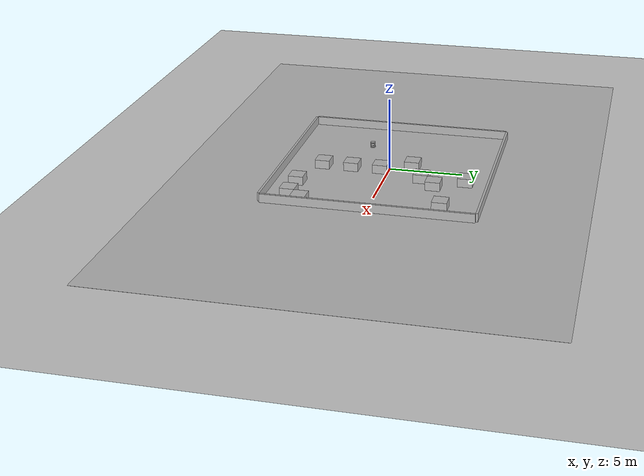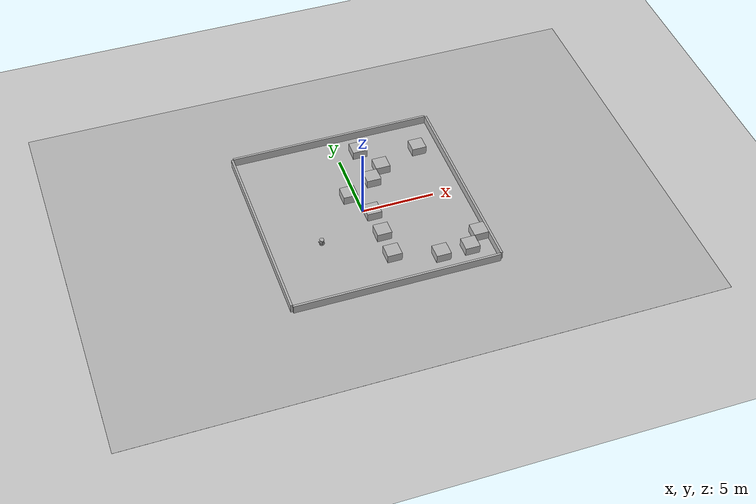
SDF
<sdf version="1.7">
 <world name="default">
  <scene>
   <shadows>0</shadows>
   <ambient>0.8 0.8 0.8 1</ambient>
   <background>1 1 1 1</background>
   <grid>1</grid>
   <origin_visual>1</origin_visual>
  </scene>
  <physics name="default_physics" default="0" type="ode">
   <max_step_size>0.001</max_step_size>
   <real_time_factor>1</real_time_factor>
   <real_time_update_rate>500</real_time_update_rate>
  </physics>
  <model name="ground_plane">
   <static>1</static>
   <link name="link">
    <collision name="collision">
     <geometry><plane><normal>0 0 1</normal><size>50 50</size></plane></geometry>
     <surface><friction><ode><mu>100</mu><mu2>50</mu2></ode></friction></surface>
    </collision>
    <visual name="visual">
     <cast_shadows>0</cast_shadows>
     <geometry><plane><normal>0 0 1</normal><size>100 100</size></plane></geometry>
     <material>
      <script><name>Gazebo/Grey</name><uri>model://media/materials/scripts/gazebo.material</uri></script>
     </material>
    </visual>
    <velocity_decay><linear>0</linear><angular>0</angular></velocity_decay>
   </link>
  </model>
  <gravity>0 0 -9.8</gravity>
  <magnetic_field>6e-06 2.3e-05 -4.2e-05</magnetic_field>
  <atmosphere type="adiabatic"/>
  <audio><device>default</device></audio>
  <spherical_coordinates>
   <surface_model>EARTH_WGS84</surface_model>
   <latitude_deg>0</latitude_deg>
   <longitude_deg>0</longitude_deg>
   <elevation>0</elevation>
   <heading_deg>0</heading_deg>
  </spherical_coordinates>
  <model name="outer_barrier_1">
   <pose>-7.075 0 0.5 0 -0 0</pose>
   <static>1</static>
   <link name="link">
    <inertial>
     <mass>1</mass>
     <inertia>
      <ixx>0.166667</ixx>
      <ixy>0</ixy>
      <ixz>0</ixz>
      <iyy>0.166667</iyy>
      <iyz>0</iyz>
      <izz>0.166667</izz>
     </inertia>
    </inertial>
    <collision name="collision"><geometry><box><size>0.2 14 1</size></box></geometry></collision>
    <visual name="visual">
     <geometry><mesh><uri>model://concrete_barrier_14m/meshes/concrete_barrier_14m.dae</uri></mesh></geometry>
    </visual>
   </link>
  </model>
  <model name="outer_barrier_2">
   <pose>7.075 0 0.5 0 -0 0</pose>
   <static>1</static>
   <link name="link">
    <inertial>
     <mass>1</mass>
     <inertia>
      <ixx>0.166667</ixx>
      <ixy>0</ixy>
      <ixz>0</ixz>
      <iyy>0.166667</iyy>
      <iyz>0</iyz>
      <izz>0.166667</izz>
     </inertia>
    </inertial>
    <collision name="collision"><geometry><box><size>0.2 14 1</size></box></geometry></collision>
    <visual name="visual">
     <geometry><mesh><uri>model://concrete_barrier_14m/meshes/concrete_barrier_14m.dae</uri></mesh></geometry>
    </visual>
   </link>
  </model>
  <model name="outer_barrier_3">
   <pose>0 7.075 0.5 0 -0 1.5708</pose>
   <static>1</static>
   <link name="link">
    <inertial>
     <mass>1</mass>
     <inertia>
      <ixx>0.166667</ixx>
      <ixy>0</ixy>
      <ixz>0</ixz>
      <iyy>0.166667</iyy>
      <iyz>0</iyz>
      <izz>0.166667</izz>
     </inertia>
    </inertial>
    <collision name="collision"><geometry><box><size>0.2 14 1</size></box></geometry></collision>
    <visual name="visual">
     <geometry><mesh><uri>model://concrete_barrier_14m/meshes/concrete_barrier_14m.dae</uri></mesh></geometry>
    </visual>
   </link>
  </model>
  <model name="outer_barrier_4">
   <pose>0 -7.075 0.5 0 -0 1.5708</pose>
   <static>1</static>
   <link name="link">
    <inertial>
     <mass>1</mass>
     <inertia>
      <ixx>0.166667</ixx>
      <ixy>0</ixy>
      <ixz>0</ixz>
      <iyy>0.166667</iyy>
      <iyz>0</iyz>
      <izz>0.166667</izz>
     </inertia>
    </inertial>
    <collision name="collision"><geometry><box><size>0.2 14 1</size></box></geometry></collision>
    <visual name="visual">
     <geometry><mesh><uri>model://concrete_barrier_14m/meshes/concrete_barrier_14m.dae</uri></mesh></geometry>
    </visual>
   </link>
  </model>
  <model name="box_03">
   <pose>0.5 -0.5 0.5 0 -0 0</pose>
   <static>1</static>
   <link name="link">
    <inertial>
     <mass>1</mass>
     <inertia>
      <ixx>0.166667</ixx>
      <ixy>0</ixy>
      <ixz>0</ixz>
      <iyy>0.166667</iyy>
      <iyz>0</iyz>
      <izz>0.166667</izz>
     </inertia>
    </inertial>
    <collision name="collision"><geometry><box><size>0.999998 1 1</size></box></geometry></collision>
    <visual name="visual">
     <geometry><mesh><uri>model://concrete_cube_1m/meshes/concrete_cube_1m.dae</uri></mesh></geometry>
    </visual>
   </link>
  </model>
  <model name="box_05">
   <pose>0.5 -2.5 0.5 0 -0 0</pose>
   <static>1</static>
   <link name="link">
    <inertial>
     <mass>1</mass>
     <inertia>
      <ixx>0.166667</ixx>
      <ixy>0</ixy>
      <ixz>0</ixz>
      <iyy>0.166667</iyy>
      <iyz>0</iyz>
      <izz>0.166667</izz>
     </inertia>
    </inertial>
    <collision name="collision"><geometry><box><size>0.999998 1 1</size></box></geometry></collision>
    <visual name="visual">
     <geometry><mesh><uri>model://concrete_cube_1m/meshes/concrete_cube_1m.dae</uri></mesh></geometry>
    </visual>
   </link>
  </model>
  <model name="box_08">
   <pose>3.5 -5.5 0.5 0 -0 0</pose>
   <static>1</static>
   <link name="link">
    <inertial>
     <mass>1</mass>
     <inertia>
      <ixx>0.166667</ixx>
      <ixy>0</ixy>
      <ixz>0</ixz>
      <iyy>0.166667</iyy>
      <iyz>0</iyz>
      <izz>0.166667</izz>
     </inertia>
    </inertial>
    <collision name="collision"><geometry><box><size>0.999998 1 1</size></box></geometry></collision>
    <visual name="visual">
     <geometry><mesh><uri>model://concrete_cube_1m/meshes/concrete_cube_1m.dae</uri></mesh></geometry>
    </visual>
   </link>
  </model>
  <model name="box_11">
   <pose>1.5 2.5 0.5 0 -0 0</pose>
   <static>1</static>
   <link name="link">
    <inertial>
     <mass>1</mass>
     <inertia>
      <ixx>0.166667</ixx>
      <ixy>0</ixy>
      <ixz>0</ixz>
      <iyy>0.166667</iyy>
      <iyz>0</iyz>
      <izz>0.166667</izz>
     </inertia>
    </inertial>
    <collision name="collision"><geometry><box><size>0.999998 1 1</size></box></geometry></collision>
    <visual name="visual">
     <geometry><mesh><uri>model://concrete_cube_1m/meshes/concrete_cube_1m.dae</uri></mesh></geometry>
    </visual>
   </link>
  </model>
  <model name="box_24">
   <pose>1.5 5.5 0.5 0 -0 0</pose>
   <static>1</static>
   <link name="link">
    <inertial>
     <mass>1</mass>
     <inertia>
      <ixx>0.166667</ixx>
      <ixy>0</ixy>
      <ixz>0</ixz>
      <iyy>0.166667</iyy>
      <iyz>0</iyz>
      <izz>0.166667</izz>
     </inertia>
    </inertial>
    <collision name="collision"><geometry><box><size>0.999998 1 1</size></box></geometry></collision>
    <visual name="visual">
     <geometry><mesh><uri>model://concrete_cube_1m/meshes/concrete_cube_1m.dae</uri></mesh></geometry>
    </visual>
   </link>
  </model>
  <model name="box_26">
   <pose>2.5 3.5 0.5 0 -0 0</pose>
   <static>1</static>
   <link name="link">
    <inertial>
     <mass>1</mass>
     <inertia>
      <ixx>0.166667</ixx>
      <ixy>0</ixy>
      <ixz>0</ixz>
      <iyy>0.166667</iyy>
      <iyz>0</iyz>
      <izz>0.166667</izz>
     </inertia>
    </inertial>
    <collision name="collision"><geometry><box><size>0.999998 1 1</size></box></geometry></collision>
    <visual name="visual">
     <geometry><mesh><uri>model://concrete_cube_1m/meshes/concrete_cube_1m.dae</uri></mesh></geometry>
    </visual>
   </link>
  </model>
  <model name="box_27">
   <pose>5.5 4.5 0.5 0 -0 0</pose>
   <static>1</static>
   <link name="link">
    <inertial>
     <mass>1</mass>
     <inertia>
      <ixx>0.166667</ixx>
      <ixy>0</ixy>
      <ixz>0</ixz>
      <iyy>0.166667</iyy>
      <iyz>0</iyz>
      <izz>0.166667</izz>
     </inertia>
    </inertial>
    <collision name="collision"><geometry><box><size>0.999998 1 1</size></box></geometry></collision>
    <visual name="visual">
     <geometry><mesh><uri>model://concrete_cube_1m/meshes/concrete_cube_1m.dae</uri></mesh></geometry>
    </visual>
   </link>
  </model>
  <model name="box_29">
   <pose>0.5 -4.5 0.5 0 -0 0</pose>
   <static>1</static>
   <link name="link">
    <inertial>
     <mass>1</mass>
     <inertia>
      <ixx>0.166667</ixx>
      <ixy>0</ixy>
      <ixz>0</ixz>
      <iyy>0.166667</iyy>
      <iyz>0</iyz>
      <izz>0.166667</izz>
     </inertia>
    </inertial>
    <collision name="collision"><geometry><box><size>0.999998 1 1</size></box></geometry></collision>
    <visual name="visual">
     <geometry><mesh><uri>model://concrete_cube_1m/meshes/concrete_cube_1m.dae</uri></mesh></geometry>
    </visual>
   </link>
  </model>
  <model name="box_36">
   <pose>-0.5 1.5 0.5 0 -0 0</pose>
   <static>1</static>
   <link name="link">
    <inertial>
     <mass>1</mass>
     <inertia>
      <ixx>0.166667</ixx>
      <ixy>0</ixy>
      <ixz>0</ixz>
      <iyy>0.166667</iyy>
      <iyz>0</iyz>
      <izz>0.166667</izz>
     </inertia>
    </inertial>
    <collision name="collision"><geometry><box><size>0.999998 1 1</size></box></geometry></collision>
    <visual name="visual">
     <geometry><mesh><uri>model://concrete_cube_1m/meshes/concrete_cube_1m.dae</uri></mesh></geometry>
    </visual>
   </link>
  </model>
  <model name="box_40">
   <pose>6.5 -4.5 0.5 0 -0 0</pose>
   <static>1</static>
   <link name="link">
    <inertial>
     <mass>1</mass>
     <inertia>
      <ixx>0.166667</ixx>
      <ixy>0</ixy>
      <ixz>0</ixz>
      <iyy>0.166667</iyy>
      <iyz>0</iyz>
      <izz>0.166667</izz>
     </inertia>
    </inertial>
    <collision name="collision"><geometry><box><size>0.999998 1 1</size></box></geometry></collision>
    <visual name="visual">
     <geometry><mesh><uri>model://concrete_cube_1m/meshes/concrete_cube_1m.dae</uri></mesh></geometry>
    </visual>
   </link>
  </model>
  <model name="box_41">
   <pose>5.5 -5.5 0.5 0 -0 0</pose>
   <static>1</static>
   <link name="link">
    <inertial>
     <mass>1</mass>
     <inertia>
      <ixx>0.166667</ixx>
      <ixy>0</ixy>
      <ixz>0</ixz>
      <iyy>0.166667</iyy>
      <iyz>0</iyz>
      <izz>0.166667</izz>
     </inertia>
    </inertial>
    <collision name="collision"><geometry><box><size>0.999998 1 1</size></box></geometry></collision>
    <visual name="visual">
     <geometry><mesh><uri>model://concrete_cube_1m/meshes/concrete_cube_1m.dae</uri></mesh></geometry>
    </visual>
   </link>
  </model>
  <model name="floor_tiles">
   <static>1</static>
   <link name="link">
    <visual name="visual_floor_tiles_0">
     <geometry><box><size>40 28 0.005</size></box></geometry>
     <material>
      <script>
       <uri>model://floor_tiles/materials/scripts</uri>
       <uri>model://floor_tiles/materials/textures</uri>
       <name>floor_tiles</name>
      </script>
     </material>
    </visual>
   </link>
  </model>
  <model name="mobile_base">
   <link name="base_footprint">
    <inertial>
     <pose>-0.009496 1.3e-05 0.135573 0 -0 0</pose>
     <mass>4.9213</mass>
     <inertia>
      <ixx>0.142129</ixx>
      <ixy>-4.09257e-06</ixy>
      <ixz>0.0154899</ixz>
      <iyy>0.140784</iyy>
      <iyz>6.52071e-06</iyz>
      <izz>0.0801071</izz>
     </inertia>
    </inertial>
    <collision name="base_footprint_fixed_joint_lump__base_collision">
     <pose>0 0 0.06969 0 -0 0</pose>
     <geometry><cylinder><length>0.10938</length><radius>0.178</radius></cylinder></geometry>
    </collision>
    <collision name="base_footprint_fixed_joint_lump__camera_link_collision_1">
     <pose>-0.118 0 0.2812 0 -0 0</pose>
     <geometry><box><size>0.07271 0.27794 0.073</size></box></geometry>
    </collision>
    <collision name="base_footprint_fixed_joint_lump__caster_back_link_collision_2">
     <pose>-0.135 0 0.0192 -1.5708 0 0</pose>
     <geometry><cylinder><length>0.0176</length><radius>0.017</radius></cylinder></geometry>
     <surface>
      <contact><ode><kp>1e+06</kp><kd>100</kd><max_vel>1</max_vel><min_depth>0.001</min_depth></ode></contact>
      <friction><ode><mu>0</mu><mu2>0</mu2></ode></friction>
     </surface>
    </collision>
    <collision name="base_footprint_fixed_joint_lump__caster_front_link_collision_3">
     <pose>0.115 0 0.0172 -1.5708 0 0</pose>
     <geometry><cylinder><length>0.0176</length><radius>0.017</radius></cylinder></geometry>
     <surface>
      <contact><ode><kp>1e+06</kp><kd>100</kd><max_vel>1</max_vel><min_depth>0.001</min_depth></ode></contact>
      <friction><ode><mu>0</mu><mu2>0</mu2></ode></friction>
     </surface>
    </collision>
    <collision name="base_footprint_fixed_joint_lump__plate_bottom_link_collision_4">
     <pose>0 0 0.1408 0 -0 0</pose>
     <geometry><cylinder><length>0.006</length><radius>0.17</radius></cylinder></geometry>
    </collision>
    <collision name="base_footprint_fixed_joint_lump__plate_middle_link_collision_5">
     <pose>0 0 0.1976 0 -0 0</pose>
     <geometry><cylinder><length>0.006</length><radius>0.17</radius></cylinder></geometry>
    </collision>
    <collision name="base_footprint_fixed_joint_lump__plate_top_link_collision_6">
     <pose>0 0 0.4068 0 -0 0</pose>
     <geometry><cylinder><length>0.006</length><radius>0.17</radius></cylinder></geometry>
    </collision>
    <collision name="base_footprint_fixed_joint_lump__pole_bottom_0_link_collision_7">
     <pose>0.12 0.082 0.113 0 -0 0</pose>
     <geometry><cylinder><length>0.0492</length><radius>0.006</radius></cylinder></geometry>
    </collision>
    <collision name="base_footprint_fixed_joint_lump__pole_bottom_1_link_collision_8">
     <pose>0.055 0.12 0.113 0 -0 0</pose>
     <geometry><cylinder><length>0.0492</length><radius>0.006</radius></cylinder></geometry>
    </collision>
    <collision name="base_footprint_fixed_joint_lump__pole_bottom_2_link_collision_9">
     <pose>-0.055 0.12 0.113 0 -0 0</pose>
     <geometry><cylinder><length>0.0492</length><radius>0.006</radius></cylinder></geometry>
    </collision>
    <collision name="base_footprint_fixed_joint_lump__pole_bottom_3_link_collision_10">
     <pose>0.12 -0.082 0.113 0 -0 0</pose>
     <geometry><cylinder><length>0.0492</length><radius>0.006</radius></cylinder></geometry>
    </collision>
    <collision name="base_footprint_fixed_joint_lump__pole_bottom_4_link_collision_11">
     <pose>0.055 -0.12 0.113 0 -0 0</pose>
     <geometry><cylinder><length>0.0492</length><radius>0.006</radius></cylinder></geometry>
    </collision>
    <collision name="base_footprint_fixed_joint_lump__pole_bottom_5_link_collision_12">
     <pose>-0.055 -0.12 0.113 0 -0 0</pose>
     <geometry><cylinder><length>0.0492</length><radius>0.006</radius></cylinder></geometry>
    </collision>
    <collision name="base_footprint_fixed_joint_lump__pole_kinect_0_link_collision_13">
     <pose>-0.1024 0.098 0.2474 0 -0 0</pose>
     <geometry><cylinder><length>0.0936</length><radius>0.006</radius></cylinder></geometry>
    </collision>
    <collision name="base_footprint_fixed_joint_lump__pole_kinect_1_link_collision_14">
     <pose>-0.1024 -0.098 0.2474 0 -0 0</pose>
     <geometry><cylinder><length>0.0936</length><radius>0.006</radius></cylinder></geometry>
    </collision>
    <collision name="base_footprint_fixed_joint_lump__pole_middle_0_link_collision_15">
     <pose>0.0381 0.1505 0.1742 0 -0 0</pose>
     <geometry><cylinder><length>0.0608</length><radius>0.006</radius></cylinder></geometry>
    </collision>
    <collision name="base_footprint_fixed_joint_lump__pole_middle_1_link_collision_16">
     <pose>0.0381 -0.1505 0.1742 0 -0 0</pose>
     <geometry><cylinder><length>0.0608</length><radius>0.006</radius></cylinder></geometry>
    </collision>
    <collision name="base_footprint_fixed_joint_lump__pole_middle_2_link_collision_17">
     <pose>-0.0381 0.1505 0.1742 0 -0 0</pose>
     <geometry><cylinder><length>0.0608</length><radius>0.006</radius></cylinder></geometry>
    </collision>
    <collision name="base_footprint_fixed_joint_lump__pole_middle_3_link_collision_18">
     <pose>-0.0381 -0.1505 0.1742 0 -0 0</pose>
     <geometry><cylinder><length>0.0608</length><radius>0.006</radius></cylinder></geometry>
    </collision>
    <collision name="base_footprint_fixed_joint_lump__pole_top_0_link_collision_19">
     <pose>0.0381 0.1505 0.3022 0 -0 0</pose>
     <geometry><cylinder><length>0.2032</length><radius>0.006</radius></cylinder></geometry>
    </collision>
    <collision name="base_footprint_fixed_joint_lump__pole_top_1_link_collision_20">
     <pose>0.0381 -0.1505 0.3022 0 -0 0</pose>
     <geometry><cylinder><length>0.2032</length><radius>0.006</radius></cylinder></geometry>
    </collision>
    <collision name="base_footprint_fixed_joint_lump__pole_top_2_link_collision_21">
     <pose>-0.0381 0.1505 0.3022 0 -0 0</pose>
     <geometry><cylinder><length>0.2032</length><radius>0.006</radius></cylinder></geometry>
    </collision>
    <collision name="base_footprint_fixed_joint_lump__pole_top_3_link_collision_22">
     <pose>-0.0381 -0.1505 0.3022 0 -0 0</pose>
     <geometry><cylinder><length>0.2032</length><radius>0.006</radius></cylinder></geometry>
    </collision>
    <visual name="base_footprint_fixed_joint_lump__base_link_visual">
     <pose>0.001 0 0.06219 0 -0 0</pose>
     <geometry>
      <mesh>
       <scale>1 1 1</scale>
       <uri>/home/whiskygrandee/catkin_ws/src/emse_bot/kobuki_description/meshes/main_body.dae</uri>
      </mesh>
     </geometry>
    </visual>
    <visual name="base_footprint_fixed_joint_lump__camera_link_visual_1">
     <pose>-0.118 0 0.2812 0 -0 1.5708</pose>
     <geometry>
      <mesh>
       <scale>1 1 1</scale>
       <uri>/home/whiskygrandee/catkin_ws/src/emse_bot/turtlebot_description/meshes/sensors/kinect.dae</uri>
      </mesh>
     </geometry>
    </visual>
    <visual name="base_footprint_fixed_joint_lump__plate_bottom_link_visual_2">
     <pose>0.02364 0 0.1408 0 -0 0</pose>
     <geometry>
      <mesh>
       <scale>1 1 1</scale>
       <uri>/home/whiskygrandee/catkin_ws/src/emse_bot/turtlebot_description/meshes/stacks/hexagons/plate_bottom.dae</uri>
      </mesh>
     </geometry>
    </visual>
    <visual name="base_footprint_fixed_joint_lump__plate_middle_link_visual_3">
     <pose>-0.01364 0 0.1976 0 -0 0</pose>
     <geometry>
      <mesh>
       <scale>1 1 1</scale>
       <uri>/home/whiskygrandee/catkin_ws/src/emse_bot/turtlebot_description/meshes/stacks/hexagons/plate_middle.dae</uri>
      </mesh>
     </geometry>
    </visual>
    <visual name="base_footprint_fixed_joint_lump__plate_top_link_visual_4">
     <pose>-0.01364 0 0.4068 0 -0 0</pose>
     <geometry>
      <mesh>
       <scale>1 1 1</scale>
       <uri>/home/whiskygrandee/catkin_ws/src/emse_bot/turtlebot_description/meshes/stacks/hexagons/plate_top.dae</uri>
      </mesh>
     </geometry>
    </visual>
    <visual name="base_footprint_fixed_joint_lump__pole_bottom_0_link_visual_5">
     <pose>0.12 0.082 0.113 0 -0 0</pose>
     <geometry>
      <mesh>
       <scale>1 1 1</scale>
       <uri>/home/whiskygrandee/catkin_ws/src/emse_bot/turtlebot_description/meshes/stacks/hexagons/pole_bottom.dae</uri>
      </mesh>
     </geometry>
    </visual>
    <visual name="base_footprint_fixed_joint_lump__pole_bottom_1_link_visual_6">
     <pose>0.055 0.12 0.113 0 -0 0</pose>
     <geometry>
      <mesh>
       <scale>1 1 1</scale>
       <uri>/home/whiskygrandee/catkin_ws/src/emse_bot/turtlebot_description/meshes/stacks/hexagons/pole_bottom.dae</uri>
      </mesh>
     </geometry>
    </visual>
    <visual name="base_footprint_fixed_joint_lump__pole_bottom_2_link_visual_7">
     <pose>-0.055 0.12 0.113 0 -0 0</pose>
     <geometry>
      <mesh>
       <scale>1 1 1</scale>
       <uri>/home/whiskygrandee/catkin_ws/src/emse_bot/turtlebot_description/meshes/stacks/hexagons/pole_bottom.dae</uri>
      </mesh>
     </geometry>
    </visual>
    <visual name="base_footprint_fixed_joint_lump__pole_bottom_3_link_visual_8">
     <pose>0.12 -0.082 0.113 0 -0 0</pose>
     <geometry>
      <mesh>
       <scale>1 1 1</scale>
       <uri>/home/whiskygrandee/catkin_ws/src/emse_bot/turtlebot_description/meshes/stacks/hexagons/pole_bottom.dae</uri>
      </mesh>
     </geometry>
    </visual>
    <visual name="base_footprint_fixed_joint_lump__pole_bottom_4_link_visual_9">
     <pose>0.055 -0.12 0.113 0 -0 0</pose>
     <geometry>
      <mesh>
       <scale>1 1 1</scale>
       <uri>/home/whiskygrandee/catkin_ws/src/emse_bot/turtlebot_description/meshes/stacks/hexagons/pole_bottom.dae</uri>
      </mesh>
     </geometry>
    </visual>
    <visual name="base_footprint_fixed_joint_lump__pole_bottom_5_link_visual_10">
     <pose>-0.055 -0.12 0.113 0 -0 0</pose>
     <geometry>
      <mesh>
       <scale>1 1 1</scale>
       <uri>/home/whiskygrandee/catkin_ws/src/emse_bot/turtlebot_description/meshes/stacks/hexagons/pole_bottom.dae</uri>
      </mesh>
     </geometry>
    </visual>
    <visual name="base_footprint_fixed_joint_lump__pole_kinect_0_link_visual_11">
     <pose>-0.1024 0.098 0.2474 0 -0 0</pose>
     <geometry>
      <mesh>
       <scale>1 1 1</scale>
       <uri>/home/whiskygrandee/catkin_ws/src/emse_bot/turtlebot_description/meshes/stacks/hexagons/pole_kinect.dae</uri>
      </mesh>
     </geometry>
    </visual>
    <visual name="base_footprint_fixed_joint_lump__pole_kinect_1_link_visual_12">
     <pose>-0.1024 -0.098 0.2474 0 -0 0</pose>
     <geometry>
      <mesh>
       <scale>1 1 1</scale>
       <uri>/home/whiskygrandee/catkin_ws/src/emse_bot/turtlebot_description/meshes/stacks/hexagons/pole_kinect.dae</uri>
      </mesh>
     </geometry>
    </visual>
    <visual name="base_footprint_fixed_joint_lump__pole_middle_0_link_visual_13">
     <pose>0.0381 0.1505 0.1742 3.14159 -0 3.14159</pose>
     <geometry>
      <mesh>
       <scale>1 1 1</scale>
       <uri>/home/whiskygrandee/catkin_ws/src/emse_bot/turtlebot_description/meshes/stacks/hexagons/pole_middle.dae</uri>
      </mesh>
     </geometry>
    </visual>
    <visual name="base_footprint_fixed_joint_lump__pole_middle_1_link_visual_14">
     <pose>0.0381 -0.1505 0.1742 3.14159 -0 3.14159</pose>
     <geometry>
      <mesh>
       <scale>1 1 1</scale>
       <uri>/home/whiskygrandee/catkin_ws/src/emse_bot/turtlebot_description/meshes/stacks/hexagons/pole_middle.dae</uri>
      </mesh>
     </geometry>
    </visual>
    <visual name="base_footprint_fixed_joint_lump__pole_middle_2_link_visual_15">
     <pose>-0.0381 0.1505 0.1742 3.14159 -0 3.14159</pose>
     <geometry>
      <mesh>
       <scale>1 1 1</scale>
       <uri>/home/whiskygrandee/catkin_ws/src/emse_bot/turtlebot_description/meshes/stacks/hexagons/pole_middle.dae</uri>
      </mesh>
     </geometry>
    </visual>
    <visual name="base_footprint_fixed_joint_lump__pole_middle_3_link_visual_16">
     <pose>-0.0381 -0.1505 0.1742 3.14159 -0 3.14159</pose>
     <geometry>
      <mesh>
       <scale>1 1 1</scale>
       <uri>/home/whiskygrandee/catkin_ws/src/emse_bot/turtlebot_description/meshes/stacks/hexagons/pole_middle.dae</uri>
      </mesh>
     </geometry>
    </visual>
    <visual name="base_footprint_fixed_joint_lump__pole_top_0_link_visual_17">
     <pose>0.0381 0.1505 0.3022 0 -0 0</pose>
     <geometry>
      <mesh>
       <scale>1 1 1</scale>
       <uri>/home/whiskygrandee/catkin_ws/src/emse_bot/turtlebot_description/meshes/stacks/hexagons/pole_top.dae</uri>
      </mesh>
     </geometry>
    </visual>
    <visual name="base_footprint_fixed_joint_lump__pole_top_1_link_visual_18">
     <pose>0.0381 -0.1505 0.3022 0 -0 0</pose>
     <geometry>
      <mesh>
       <scale>1 1 1</scale>
       <uri>/home/whiskygrandee/catkin_ws/src/emse_bot/turtlebot_description/meshes/stacks/hexagons/pole_top.dae</uri>
      </mesh>
     </geometry>
    </visual>
    <visual name="base_footprint_fixed_joint_lump__pole_top_2_link_visual_19">
     <pose>-0.0381 0.1505 0.3022 0 -0 0</pose>
     <geometry>
      <mesh>
       <scale>1 1 1</scale>
       <uri>/home/whiskygrandee/catkin_ws/src/emse_bot/turtlebot_description/meshes/stacks/hexagons/pole_top.dae</uri>
      </mesh>
     </geometry>
    </visual>
    <visual name="base_footprint_fixed_joint_lump__pole_top_3_link_visual_20">
     <pose>-0.0381 -0.1505 0.3022 0 -0 0</pose>
     <geometry>
      <mesh>
       <scale>1 1 1</scale>
       <uri>/home/whiskygrandee/catkin_ws/src/emse_bot/turtlebot_description/meshes/stacks/hexagons/pole_top.dae</uri>
      </mesh>
     </geometry>
    </visual>
    <sensor name="bumpers" type="contact">
     <always_on>1</always_on>
     <update_rate>50</update_rate>
     <visualize>1</visualize>
     <contact>
      <collision>base_footprint_fixed_joint_lump__base_collision</collision>
      <topic>__default_topic__</topic>
     </contact>
     <pose>0 0 0.0102 0 -0 0</pose>
    </sensor>
    <sensor name="camera" type="depth">
     <always_on>1</always_on>
     <update_rate>20</update_rate>
     <camera>
      <horizontal_fov>1.0472</horizontal_fov>
      <image><format>B8G8R8</format><width>640</width><height>480</height></image>
      <clip><near>0.05</near><far>8</far></clip>
     </camera>
     <plugin name="kinect_camera_controller" filename="libgazebo_ros_openni_kinect.so">
      <cameraName>camera</cameraName>
      <alwaysOn>1</alwaysOn>
      <updateRate>10</updateRate>
      <imageTopicName>rgb/image_raw</imageTopicName>
      <depthImageTopicName>depth/image_raw</depthImageTopicName>
      <pointCloudTopicName>depth/points</pointCloudTopicName>
      <cameraInfoTopicName>rgb/camera_info</cameraInfoTopicName>
      <depthImageCameraInfoTopicName>depth/camera_info</depthImageCameraInfoTopicName>
      <frameName>camera_depth_optical_frame</frameName>
      <baseline>0.1</baseline>
      <distortion_k1>0.0</distortion_k1>
      <distortion_k2>0.0</distortion_k2>
      <distortion_k3>0.0</distortion_k3>
      <distortion_t1>0.0</distortion_t1>
      <distortion_t2>0.0</distortion_t2>
      <pointCloudCutoff>0.4</pointCloudCutoff>
      <robotNamespace>/</robotNamespace>
     </plugin>
     <pose>-0.118 0 0.2812 0 -0 0</pose>
    </sensor>
    <sensor name="cliff_sensor_front" type="ray">
     <always_on>1</always_on>
     <update_rate>50</update_rate>
     <visualize>1</visualize>
     <ray>
      <scan>
       <horizontal>
        <samples>50</samples>
        <resolution>1</resolution>
        <min_angle>-0.0436</min_angle>
        <max_angle>0.0436</max_angle>
       </horizontal>
       <vertical><samples>1</samples><min_angle>0</min_angle><max_angle>0</max_angle></vertical>
      </scan>
      <range><min>0.01</min><max>0.15</max><resolution>1</resolution></range>
     </ray>
     <pose>0.156 0 0.0316 3.14159 1.57079 3.14159</pose>
    </sensor>
    <sensor name="cliff_sensor_left" type="ray">
     <always_on>1</always_on>
     <update_rate>50</update_rate>
     <visualize>1</visualize>
     <ray>
      <scan>
       <horizontal>
        <samples>50</samples>
        <resolution>1</resolution>
        <min_angle>-0.0436</min_angle>
        <max_angle>0.0436</max_angle>
       </horizontal>
       <vertical><samples>1</samples><min_angle>0</min_angle><max_angle>0</max_angle></vertical>
      </scan>
      <range><min>0.01</min><max>0.15</max><resolution>1</resolution></range>
     </ray>
     <pose>0.08734 0.13601 0.0316 3.14159 1.57079 3.14159</pose>
    </sensor>
    <sensor name="cliff_sensor_right" type="ray">
     <always_on>1</always_on>
     <update_rate>50</update_rate>
     <visualize>1</visualize>
     <ray>
      <scan>
       <horizontal>
        <samples>50</samples>
        <resolution>1</resolution>
        <min_angle>-0.0436</min_angle>
        <max_angle>0.0436</max_angle>
       </horizontal>
       <vertical><samples>1</samples><min_angle>0</min_angle><max_angle>0</max_angle></vertical>
      </scan>
      <range><min>0.01</min><max>0.15</max><resolution>1</resolution></range>
     </ray>
     <pose>0.085 -0.13601 0.0316 3.14159 1.57079 3.14159</pose>
    </sensor>
    <sensor name="imu" type="imu">
     <always_on>1</always_on>
     <update_rate>50</update_rate>
     <visualize>0</visualize>
     <imu>
      <noise>
       <type>gaussian</type>
       <rate><mean>0.0</mean><stddev>1.96e-06</stddev><bias_mean>0.0</bias_mean><bias_stddev>0.0</bias_stddev></rate>
       <accel>
        <mean>0.0</mean>
        <stddev>1.7e-2</stddev>
        <bias_mean>0.1</bias_mean>
        <bias_stddev>0.001</bias_stddev>
       </accel>
      </noise>
     </imu>
     <pose>0.056 0.062 0.0304 0 -0 0</pose>
    </sensor>
   </link>
   <joint name="wheel_left_joint" type="revolute">
    <pose relative_to="base_footprint">0 0.115 0.0352 -1.5708 0 0</pose>
    <parent>base_footprint</parent>
    <child>wheel_left_link</child>
    <axis>
     <xyz>0 0 1</xyz>
     <limit><lower>-1e+16</lower><upper>1e+16</upper></limit>
     <dynamics><spring_reference>0</spring_reference><spring_stiffness>0</spring_stiffness></dynamics>
    </axis>
   </joint>
   <link name="wheel_left_link">
    <pose relative_to="wheel_left_joint">0 0 0 0 -0 0</pose>
    <inertial>
     <mass>0.01</mass>
     <inertia><ixx>0.001</ixx><ixy>0</ixy><ixz>0</ixz><iyy>0.001</iyy><iyz>0</iyz><izz>0.001</izz></inertia>
    </inertial>
    <collision name="wheel_left_link_collision">
     <geometry><cylinder><length>0.0206</length><radius>0.0352</radius></cylinder></geometry>
     <surface>
      <contact><ode><kp>1e+06</kp><kd>100</kd><max_vel>1</max_vel><min_depth>0.001</min_depth></ode></contact>
      <friction><ode><mu>1</mu><mu2>1</mu2></ode></friction>
     </surface>
    </collision>
    <visual name="wheel_left_link_visual">
     <geometry>
      <mesh>
       <scale>1 1 1</scale>
       <uri>/home/whiskygrandee/catkin_ws/src/emse_bot/kobuki_description/meshes/wheel.dae</uri>
      </mesh>
     </geometry>
    </visual>
   </link>
   <joint name="wheel_right_joint" type="revolute">
    <pose relative_to="base_footprint">0 -0.115 0.0352 -1.5708 0 0</pose>
    <parent>base_footprint</parent>
    <child>wheel_right_link</child>
    <axis>
     <xyz>0 0 1</xyz>
     <limit><lower>-1e+16</lower><upper>1e+16</upper></limit>
     <dynamics><spring_reference>0</spring_reference><spring_stiffness>0</spring_stiffness></dynamics>
    </axis>
   </joint>
   <link name="wheel_right_link">
    <pose relative_to="wheel_right_joint">0 0 0 0 -0 0</pose>
    <inertial>
     <mass>0.01</mass>
     <inertia><ixx>0.001</ixx><ixy>0</ixy><ixz>0</ixz><iyy>0.001</iyy><iyz>0</iyz><izz>0.001</izz></inertia>
    </inertial>
    <collision name="wheel_right_link_collision">
     <geometry><cylinder><length>0.0206</length><radius>0.035</radius></cylinder></geometry>
     <surface>
      <contact><ode><kp>1e+06</kp><kd>100</kd><max_vel>1</max_vel><min_depth>0.001</min_depth></ode></contact>
      <friction><ode><mu>1</mu><mu2>1</mu2></ode></friction>
     </surface>
    </collision>
    <visual name="wheel_right_link_visual">
     <geometry>
      <mesh>
       <scale>1 1 1</scale>
       <uri>/home/whiskygrandee/catkin_ws/src/emse_bot/kobuki_description/meshes/wheel.dae</uri>
      </mesh>
     </geometry>
    </visual>
   </link>
   <plugin name="kobuki_controller" filename="libgazebo_ros_kobuki.so">
    <publish_tf>1</publish_tf>
    <leftJoint>wheel_left_joint</leftJoint>
    <rightJoint>wheel_right_joint</rightJoint>
    <wheel_separation>.230</wheel_separation>
    <wheel_diameter>0.070</wheel_diameter>
    <torque>1.0</torque>
    <velocity_command_timeout>0.6</velocity_command_timeout>
    <cliff_sensor_left_name>cliff_sensor_left</cliff_sensor_left_name>
    <cliff_sensor_center_name>cliff_sensor_front</cliff_sensor_center_name>
    <cliff_sensor_right_name>cliff_sensor_right</cliff_sensor_right_name>
    <cliff_detection_threshold>0.04</cliff_detection_threshold>
    <bumper_name>bumpers</bumper_name>
    <imu_name>imu</imu_name>
    <robotNamespace>/</robotNamespace>
   </plugin>
   <static>0</static>
   <plugin name="differential_drive_controller" filename="libgazebo_ros_diff_drive.so">
    <alwaysOn>1</alwaysOn>
    <updateRate>20</updateRate>
    <leftJoint>wheel_left_joint</leftJoint>
    <rightJoint>wheel_right_joint</rightJoint>
    <wheelSeparation>.230</wheelSeparation>
    <wheelDiameter>0.070</wheelDiameter>
    <torque>1.0</torque>
    <commandTopic>cmd_vel</commandTopic>
    <odometryTopic>odom</odometryTopic>
    <odometryFrame>odom</odometryFrame>
    <robotBaseFrame>base_footprint</robotBaseFrame>
    <publishWheelJointState>1</publishWheelJointState>
    <legacyMode>1</legacyMode>
    <robotNamespace>/</robotNamespace>
   </plugin>
   <pose>-3.49813 -1.99995 -0.000246 0.000761 -0.014442 0.000586</pose>
  </model>
 </world>
</sdf>
